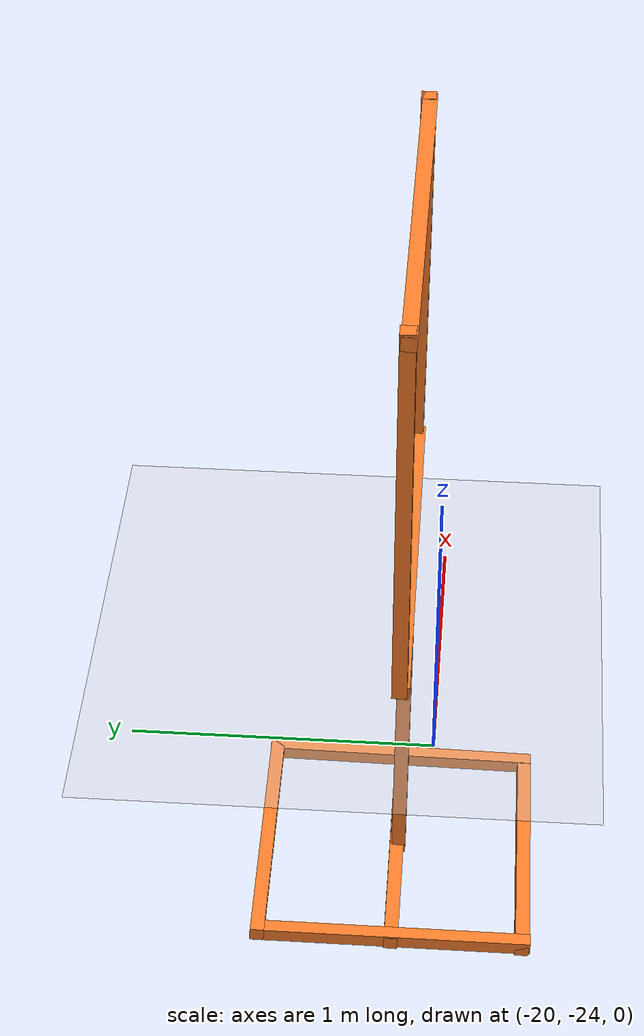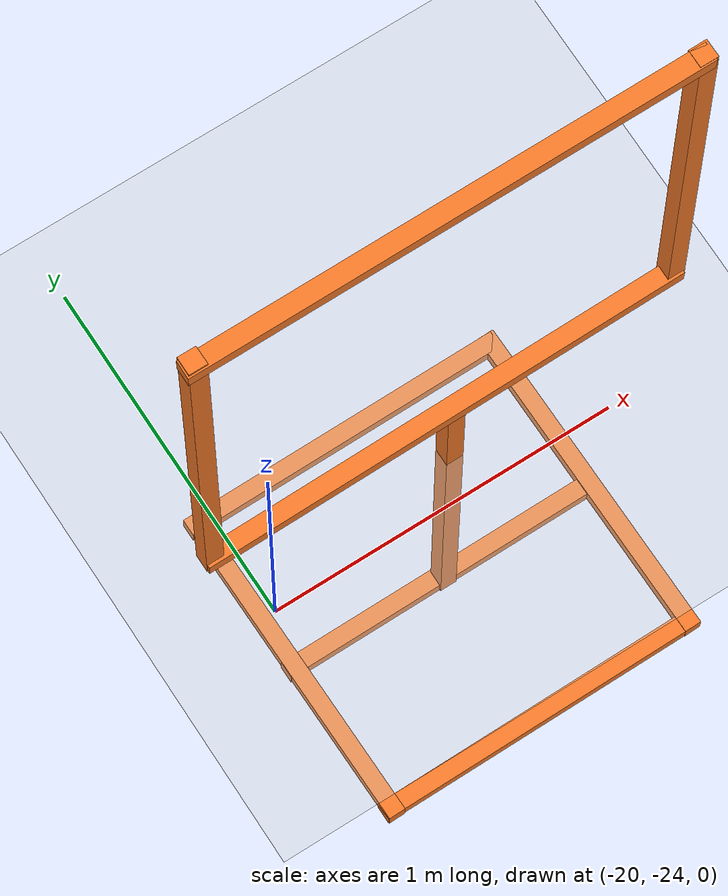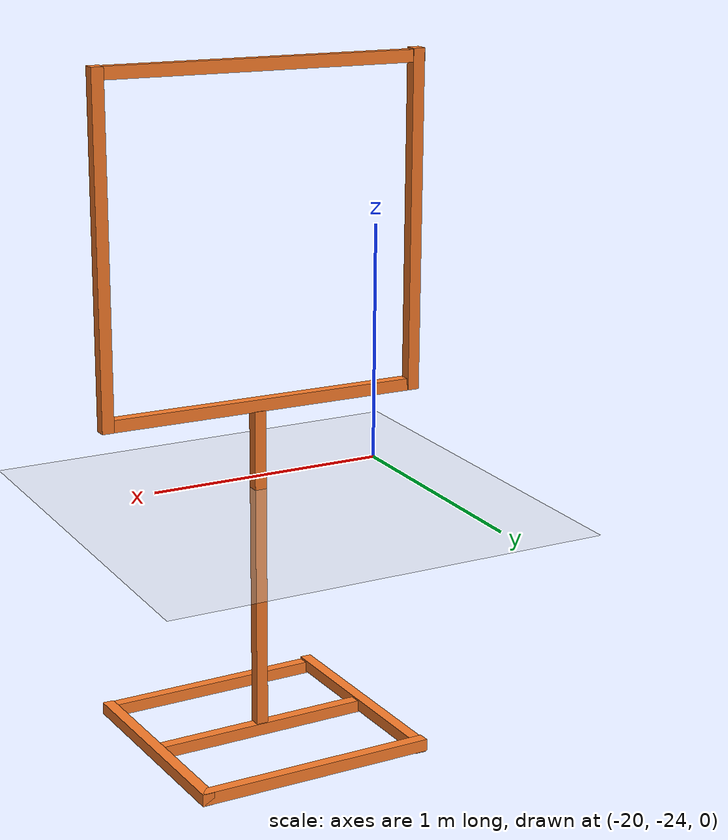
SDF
<sdf version="1.6">
 <world name="default">
  <model name="ground_plane">
   <static>1</static>
   <link name="link">
    <collision name="collision">
     <geometry><plane><normal>0 0 1</normal><size>100 100</size></plane></geometry>
     <surface><friction><ode><mu>100</mu><mu2>50</mu2></ode></friction></surface>
    </collision>
    <visual name="visual">
     <cast_shadows>0</cast_shadows>
     <geometry><plane><normal>0 0 1</normal><size>100 100</size></plane></geometry>
     <material>
      <script><uri>file://media/materials/scripts/gazebo.material</uri><name>Gazebo/Grey</name></script>
     </material>
    </visual>
    <velocity_decay><linear>0</linear><angular>0</angular></velocity_decay>
   </link>
  </model>
  <model name="closed_gate_clone_clone_0_clone_1">
   <link name="link">
    <inertial>
     <mass>1</mass>
     <inertia>
      <ixx>0.166667</ixx>
      <ixy>0</ixy>
      <ixz>0</ixz>
      <iyy>0.166667</iyy>
      <iyz>0</iyz>
      <izz>0.166667</izz>
     </inertia>
    </inertial>
    <pose>0.404756 -0.715724 1.41623 0 -0 0</pose>
    <visual name="visual">
     <geometry><box><size>0.05 0.05 1.4</size></box></geometry>
     <material>
      <script><name>Gazebo/Grey</name><uri>file://media/materials/scripts/gazebo.material</uri></script>
      <shader type="vertex"><normal_map>__default__</normal_map></shader>
      <ambient>0.976 0.484 0.164 1</ambient>
      <diffuse>0.976 0.484 0.164 1</diffuse>
      <specular>0.01 0.01 0.01 1</specular>
      <emissive>0 0 0 1</emissive>
     </material>
    </visual>
    <collision name="collision">
     <geometry><box><size>0.05 0.05 1.4</size></box></geometry>
     <surface>
      <friction>
       <ode><mu>1</mu><mu2>1</mu2><fdir1>0 0 0</fdir1><slip1>0</slip1><slip2>0</slip2></ode>
       <torsional>
        <coefficient>1</coefficient>
        <patch_radius>0</patch_radius>
        <surface_radius>0</surface_radius>
        <use_patch_radius>1</use_patch_radius>
        <ode><slip>0</slip></ode>
       </torsional>
      </friction>
      <bounce><restitution_coefficient>0</restitution_coefficient><threshold>1e+06</threshold></bounce>
      <contact>
       <collide_without_contact>0</collide_without_contact>
       <collide_without_contact_bitmask>1</collide_without_contact_bitmask>
       <collide_bitmask>1</collide_bitmask>
       <ode>
        <soft_cfm>0</soft_cfm>
        <soft_erp>0.2</soft_erp>
        <kp>1e+13</kp>
        <kd>1</kd>
        <max_vel>0.01</max_vel>
        <min_depth>0</min_depth>
       </ode>
       <bullet>
        <split_impulse>1</split_impulse>
        <split_impulse_penetration_threshold>-0.01</split_impulse_penetration_threshold>
        <soft_cfm>0</soft_cfm>
        <soft_erp>0.2</soft_erp>
        <kp>1e+13</kp>
        <kd>1</kd>
       </bullet>
      </contact>
     </surface>
    </collision>
   </link>
   <link name="link_clone_0_clone_0">
    <inertial>
     <mass>1</mass>
     <inertia>
      <ixx>0.166667</ixx>
      <ixy>0</ixy>
      <ixz>0</ixz>
      <iyy>0.166667</iyy>
      <iyz>0</iyz>
      <izz>0.166667</izz>
     </inertia>
    </inertial>
    <pose>1.11096 -0.693594 -0.667388 -1.57955 0.044957 -1.56415</pose>
    <visual name="visual">
     <geometry><box><size>0.05 0.05 1</size></box></geometry>
     <material>
      <script><name>Gazebo/Grey</name><uri>file://media/materials/scripts/gazebo.material</uri></script>
      <shader type="vertex"><normal_map>__default__</normal_map></shader>
      <ambient>0.976 0.484 0.164 1</ambient>
      <diffuse>0.976 0.484 0.164 1</diffuse>
      <specular>0.01 0.01 0.01 1</specular>
      <emissive>0 0 0 1</emissive>
     </material>
    </visual>
    <collision name="collision">
     <geometry><box><size>0.05 0.05 1</size></box></geometry>
     <surface>
      <friction>
       <ode><mu>1</mu><mu2>1</mu2><fdir1>0 0 0</fdir1><slip1>0</slip1><slip2>0</slip2></ode>
       <torsional>
        <coefficient>1</coefficient>
        <patch_radius>0</patch_radius>
        <surface_radius>0</surface_radius>
        <use_patch_radius>1</use_patch_radius>
        <ode><slip>0</slip></ode>
       </torsional>
      </friction>
      <bounce><restitution_coefficient>0</restitution_coefficient><threshold>1e+06</threshold></bounce>
      <contact>
       <collide_without_contact>0</collide_without_contact>
       <collide_without_contact_bitmask>1</collide_without_contact_bitmask>
       <collide_bitmask>1</collide_bitmask>
       <ode>
        <soft_cfm>0</soft_cfm>
        <soft_erp>0.2</soft_erp>
        <kp>1e+13</kp>
        <kd>1</kd>
        <max_vel>0.01</max_vel>
        <min_depth>0</min_depth>
       </ode>
       <bullet>
        <split_impulse>1</split_impulse>
        <split_impulse_penetration_threshold>-0.01</split_impulse_penetration_threshold>
        <soft_cfm>0</soft_cfm>
        <soft_erp>0.2</soft_erp>
        <kp>1e+13</kp>
        <kd>1</kd>
       </bullet>
      </contact>
     </surface>
    </collision>
   </link>
   <link name="link_clone_0_clone_0_clone">
    <inertial>
     <mass>1</mass>
     <inertia>
      <ixx>0.166667</ixx>
      <ixy>0</ixy>
      <ixz>0</ixz>
      <iyy>0.166667</iyy>
      <iyz>0</iyz>
      <izz>0.166667</izz>
     </inertia>
    </inertial>
    <pose>0.637485 -0.695511 -0.656732 -1.55146 -0.019345 0.017432</pose>
    <visual name="visual">
     <geometry><box><size>0.05 0.05 1</size></box></geometry>
     <material>
      <script><name>Gazebo/Grey</name><uri>file://media/materials/scripts/gazebo.material</uri></script>
      <shader type="vertex"><normal_map>__default__</normal_map></shader>
      <ambient>0.976 0.484 0.164 1</ambient>
      <diffuse>0.976 0.484 0.164 1</diffuse>
      <specular>0.01 0.01 0.01 1</specular>
      <emissive>0 0 0 1</emissive>
     </material>
    </visual>
    <collision name="collision">
     <geometry><box><size>0.05 0.05 1</size></box></geometry>
     <surface>
      <friction>
       <ode><mu>1</mu><mu2>1</mu2><fdir1>0 0 0</fdir1><slip1>0</slip1><slip2>0</slip2></ode>
       <torsional>
        <coefficient>1</coefficient>
        <patch_radius>0</patch_radius>
        <surface_radius>0</surface_radius>
        <use_patch_radius>1</use_patch_radius>
        <ode><slip>0</slip></ode>
       </torsional>
      </friction>
      <bounce><restitution_coefficient>0</restitution_coefficient><threshold>1e+06</threshold></bounce>
      <contact>
       <collide_without_contact>0</collide_without_contact>
       <collide_without_contact_bitmask>1</collide_without_contact_bitmask>
       <collide_bitmask>1</collide_bitmask>
       <ode>
        <soft_cfm>0</soft_cfm>
        <soft_erp>0.2</soft_erp>
        <kp>1e+13</kp>
        <kd>1</kd>
        <max_vel>0.01</max_vel>
        <min_depth>0</min_depth>
       </ode>
       <bullet>
        <split_impulse>1</split_impulse>
        <split_impulse_penetration_threshold>-0.01</split_impulse_penetration_threshold>
        <soft_cfm>0</soft_cfm>
        <soft_erp>0.2</soft_erp>
        <kp>1e+13</kp>
        <kd>1</kd>
       </bullet>
      </contact>
     </surface>
    </collision>
   </link>
   <link name="link_clone_0_clone_0_clone_0">
    <inertial>
     <mass>1</mass>
     <inertia>
      <ixx>0.166667</ixx>
      <ixy>0</ixy>
      <ixz>0</ixz>
      <iyy>0.166667</iyy>
      <iyz>0</iyz>
      <izz>0.166667</izz>
     </inertia>
    </inertial>
    <pose>1.12077 -1.16283 -0.677317 -1.57839 0.053451 -1.56287</pose>
    <visual name="visual">
     <geometry><box><size>0.05 0.05 1</size></box></geometry>
     <material>
      <script><name>Gazebo/Grey</name><uri>file://media/materials/scripts/gazebo.material</uri></script>
      <shader type="vertex"><normal_map>__default__</normal_map></shader>
      <ambient>0.976 0.484 0.164 1</ambient>
      <diffuse>0.976 0.484 0.164 1</diffuse>
      <specular>0.01 0.01 0.01 1</specular>
      <emissive>0 0 0 1</emissive>
     </material>
    </visual>
    <collision name="collision">
     <geometry><box><size>0.05 0.05 1</size></box></geometry>
     <surface>
      <friction>
       <ode><mu>1</mu><mu2>1</mu2><fdir1>0 0 0</fdir1><slip1>0</slip1><slip2>0</slip2></ode>
       <torsional>
        <coefficient>1</coefficient>
        <patch_radius>0</patch_radius>
        <surface_radius>0</surface_radius>
        <use_patch_radius>1</use_patch_radius>
        <ode><slip>0</slip></ode>
       </torsional>
      </friction>
      <bounce><restitution_coefficient>0</restitution_coefficient><threshold>1e+06</threshold></bounce>
      <contact>
       <collide_without_contact>0</collide_without_contact>
       <collide_without_contact_bitmask>1</collide_without_contact_bitmask>
       <collide_bitmask>1</collide_bitmask>
       <ode>
        <soft_cfm>0</soft_cfm>
        <soft_erp>0.2</soft_erp>
        <kp>1e+13</kp>
        <kd>1</kd>
        <max_vel>0.01</max_vel>
        <min_depth>0</min_depth>
       </ode>
       <bullet>
        <split_impulse>1</split_impulse>
        <split_impulse_penetration_threshold>-0.01</split_impulse_penetration_threshold>
        <soft_cfm>0</soft_cfm>
        <soft_erp>0.2</soft_erp>
        <kp>1e+13</kp>
        <kd>1</kd>
       </bullet>
      </contact>
     </surface>
    </collision>
   </link>
   <link name="link_clone_0_clone_0_clone_2">
    <inertial>
     <mass>1</mass>
     <inertia>
      <ixx>0.166667</ixx>
      <ixy>0</ixy>
      <ixz>0</ixz>
      <iyy>0.166667</iyy>
      <iyz>0</iyz>
      <izz>0.166667</izz>
     </inertia>
    </inertial>
    <pose>1.10088 -0.214462 -0.645898 -1.57451 0.053447 -1.56287</pose>
    <visual name="visual">
     <geometry><box><size>0.05 0.05 1</size></box></geometry>
     <material>
      <script><name>Gazebo/Grey</name><uri>file://media/materials/scripts/gazebo.material</uri></script>
      <shader type="vertex"><normal_map>__default__</normal_map></shader>
      <ambient>0.976 0.484 0.164 1</ambient>
      <diffuse>0.976 0.484 0.164 1</diffuse>
      <specular>0.01 0.01 0.01 1</specular>
      <emissive>0 0 0 1</emissive>
     </material>
    </visual>
    <collision name="collision">
     <geometry><box><size>0.05 0.05 1</size></box></geometry>
     <surface>
      <friction>
       <ode><mu>1</mu><mu2>1</mu2><fdir1>0 0 0</fdir1><slip1>0</slip1><slip2>0</slip2></ode>
       <torsional>
        <coefficient>1</coefficient>
        <patch_radius>0</patch_radius>
        <surface_radius>0</surface_radius>
        <use_patch_radius>1</use_patch_radius>
        <ode><slip>0</slip></ode>
       </torsional>
      </friction>
      <bounce><restitution_coefficient>0</restitution_coefficient><threshold>1e+06</threshold></bounce>
      <contact>
       <collide_without_contact>0</collide_without_contact>
       <collide_without_contact_bitmask>1</collide_without_contact_bitmask>
       <collide_bitmask>1</collide_bitmask>
       <ode>
        <soft_cfm>0</soft_cfm>
        <soft_erp>0.2</soft_erp>
        <kp>1e+13</kp>
        <kd>1</kd>
        <max_vel>0.01</max_vel>
        <min_depth>0</min_depth>
       </ode>
       <bullet>
        <split_impulse>1</split_impulse>
        <split_impulse_penetration_threshold>-0.01</split_impulse_penetration_threshold>
        <soft_cfm>0</soft_cfm>
        <soft_erp>0.2</soft_erp>
        <kp>1e+13</kp>
        <kd>1</kd>
       </bullet>
      </contact>
     </surface>
    </collision>
   </link>
   <link name="link_clone_0_clone_0_clone_clone">
    <inertial>
     <mass>1</mass>
     <inertia>
      <ixx>0.166667</ixx>
      <ixy>0</ixy>
      <ixz>0</ixz>
      <iyy>0.166667</iyy>
      <iyz>0</iyz>
      <izz>0.166667</izz>
     </inertia>
    </inertial>
    <pose>1.59453 -0.684923 -0.663241 -1.53838 -0.023075 0.018345</pose>
    <visual name="visual">
     <geometry><box><size>0.05 0.05 1</size></box></geometry>
     <material>
      <script><name>Gazebo/Grey</name><uri>file://media/materials/scripts/gazebo.material</uri></script>
      <shader type="vertex"><normal_map>__default__</normal_map></shader>
      <ambient>0.976 0.484 0.164 1</ambient>
      <diffuse>0.976 0.484 0.164 1</diffuse>
      <specular>0.01 0.01 0.01 1</specular>
      <emissive>0 0 0 1</emissive>
     </material>
    </visual>
    <collision name="collision">
     <geometry><box><size>0.05 0.05 1</size></box></geometry>
     <surface>
      <friction>
       <ode><mu>1</mu><mu2>1</mu2><fdir1>0 0 0</fdir1><slip1>0</slip1><slip2>0</slip2></ode>
       <torsional>
        <coefficient>1</coefficient>
        <patch_radius>0</patch_radius>
        <surface_radius>0</surface_radius>
        <use_patch_radius>1</use_patch_radius>
        <ode><slip>0</slip></ode>
       </torsional>
      </friction>
      <bounce><restitution_coefficient>0</restitution_coefficient><threshold>1e+06</threshold></bounce>
      <contact>
       <collide_without_contact>0</collide_without_contact>
       <collide_without_contact_bitmask>1</collide_without_contact_bitmask>
       <collide_bitmask>1</collide_bitmask>
       <ode>
        <soft_cfm>0</soft_cfm>
        <soft_erp>0.2</soft_erp>
        <kp>1e+13</kp>
        <kd>1</kd>
        <max_vel>0.01</max_vel>
        <min_depth>0</min_depth>
       </ode>
       <bullet>
        <split_impulse>1</split_impulse>
        <split_impulse_penetration_threshold>-0.01</split_impulse_penetration_threshold>
        <soft_cfm>0</soft_cfm>
        <soft_erp>0.2</soft_erp>
        <kp>1e+13</kp>
        <kd>1</kd>
       </bullet>
      </contact>
     </surface>
    </collision>
   </link>
   <link name="link_clone_0_clone_1">
    <inertial>
     <mass>1</mass>
     <inertia>
      <ixx>0.166667</ixx>
      <ixy>0</ixy>
      <ixz>0</ixz>
      <iyy>0.166667</iyy>
      <iyz>0</iyz>
      <izz>0.166667</izz>
     </inertia>
    </inertial>
    <pose>1.08198 -0.717602 0.744079 -1.56201 0.04483 -1.56244</pose>
    <visual name="visual">
     <geometry><box><size>0.05 0.05 1.4</size></box></geometry>
     <material>
      <script><name>Gazebo/Grey</name><uri>file://media/materials/scripts/gazebo.material</uri></script>
      <shader type="vertex"><normal_map>__default__</normal_map></shader>
      <ambient>0.976 0.484 0.164 1</ambient>
      <diffuse>0.976 0.484 0.164 1</diffuse>
      <specular>0.01 0.01 0.01 1</specular>
      <emissive>0 0 0 1</emissive>
     </material>
    </visual>
    <collision name="collision">
     <geometry><box><size>0.05 0.05 1.4</size></box></geometry>
     <surface>
      <friction>
       <ode><mu>1</mu><mu2>1</mu2><fdir1>0 0 0</fdir1><slip1>0</slip1><slip2>0</slip2></ode>
       <torsional>
        <coefficient>1</coefficient>
        <patch_radius>0</patch_radius>
        <surface_radius>0</surface_radius>
        <use_patch_radius>1</use_patch_radius>
        <ode><slip>0</slip></ode>
       </torsional>
      </friction>
      <bounce><restitution_coefficient>0</restitution_coefficient><threshold>1e+06</threshold></bounce>
      <contact>
       <collide_without_contact>0</collide_without_contact>
       <collide_without_contact_bitmask>1</collide_without_contact_bitmask>
       <collide_bitmask>1</collide_bitmask>
       <ode>
        <soft_cfm>0</soft_cfm>
        <soft_erp>0.2</soft_erp>
        <kp>1e+13</kp>
        <kd>1</kd>
        <max_vel>0.01</max_vel>
        <min_depth>0</min_depth>
       </ode>
       <bullet>
        <split_impulse>1</split_impulse>
        <split_impulse_penetration_threshold>-0.01</split_impulse_penetration_threshold>
        <soft_cfm>0</soft_cfm>
        <soft_erp>0.2</soft_erp>
        <kp>1e+13</kp>
        <kd>1</kd>
       </bullet>
      </contact>
     </surface>
    </collision>
   </link>
   <link name="link_clone_0_clone_1_clone">
    <inertial>
     <mass>1</mass>
     <inertia>
      <ixx>0.166667</ixx>
      <ixy>0</ixy>
      <ixz>0</ixz>
      <iyy>0.166667</iyy>
      <iyz>0</iyz>
      <izz>0.166667</izz>
     </inertia>
    </inertial>
    <pose>1.07529 -0.719849 2.09328 -1.55888 0.053444 -1.57124</pose>
    <visual name="visual">
     <geometry><box><size>0.05 0.05 1.4</size></box></geometry>
     <material>
      <script><name>Gazebo/Grey</name><uri>file://media/materials/scripts/gazebo.material</uri></script>
      <shader type="vertex"><normal_map>__default__</normal_map></shader>
      <ambient>0.976 0.484 0.164 1</ambient>
      <diffuse>0.976 0.484 0.164 1</diffuse>
      <specular>0.01 0.01 0.01 1</specular>
      <emissive>0 0 0 1</emissive>
     </material>
    </visual>
    <collision name="collision">
     <geometry><box><size>0.05 0.05 1.4</size></box></geometry>
     <surface>
      <friction>
       <ode><mu>1</mu><mu2>1</mu2><fdir1>0 0 0</fdir1><slip1>0</slip1><slip2>0</slip2></ode>
       <torsional>
        <coefficient>1</coefficient>
        <patch_radius>0</patch_radius>
        <surface_radius>0</surface_radius>
        <use_patch_radius>1</use_patch_radius>
        <ode><slip>0</slip></ode>
       </torsional>
      </friction>
      <bounce><restitution_coefficient>0</restitution_coefficient><threshold>1e+06</threshold></bounce>
      <contact>
       <collide_without_contact>0</collide_without_contact>
       <collide_without_contact_bitmask>1</collide_without_contact_bitmask>
       <collide_bitmask>1</collide_bitmask>
       <ode>
        <soft_cfm>0</soft_cfm>
        <soft_erp>0.2</soft_erp>
        <kp>1e+13</kp>
        <kd>1</kd>
        <max_vel>0.01</max_vel>
        <min_depth>0</min_depth>
       </ode>
       <bullet>
        <split_impulse>1</split_impulse>
        <split_impulse_penetration_threshold>-0.01</split_impulse_penetration_threshold>
        <soft_cfm>0</soft_cfm>
        <soft_erp>0.2</soft_erp>
        <kp>1e+13</kp>
        <kd>1</kd>
       </bullet>
      </contact>
     </surface>
    </collision>
   </link>
   <link name="link_clone_1">
    <inertial>
     <mass>1</mass>
     <inertia>
      <ixx>0.166667</ixx>
      <ixy>0</ixy>
      <ixz>0</ixz>
      <iyy>0.166667</iyy>
      <iyz>0</iyz>
      <izz>0.166667</izz>
     </inertia>
    </inertial>
    <pose>1.11167 -0.706269 0.02254 0.008527 -0.003582 0.001077</pose>
    <visual name="visual">
     <geometry><box><size>0.05 0.05 1.4</size></box></geometry>
     <material>
      <script><name>Gazebo/Grey</name><uri>file://media/materials/scripts/gazebo.material</uri></script>
      <shader type="vertex"><normal_map>__default__</normal_map></shader>
      <ambient>0.976 0.484 0.164 1</ambient>
      <diffuse>0.976 0.484 0.164 1</diffuse>
      <specular>0.01 0.01 0.01 1</specular>
      <emissive>0 0 0 1</emissive>
     </material>
    </visual>
    <collision name="collision">
     <geometry><box><size>0.05 0.05 1.4</size></box></geometry>
     <surface>
      <friction>
       <ode><mu>1</mu><mu2>1</mu2><fdir1>0 0 0</fdir1><slip1>0</slip1><slip2>0</slip2></ode>
       <torsional>
        <coefficient>1</coefficient>
        <patch_radius>0</patch_radius>
        <surface_radius>0</surface_radius>
        <use_patch_radius>1</use_patch_radius>
        <ode><slip>0</slip></ode>
       </torsional>
      </friction>
      <bounce><restitution_coefficient>0</restitution_coefficient><threshold>1e+06</threshold></bounce>
      <contact>
       <collide_without_contact>0</collide_without_contact>
       <collide_without_contact_bitmask>1</collide_without_contact_bitmask>
       <collide_bitmask>1</collide_bitmask>
       <ode>
        <soft_cfm>0</soft_cfm>
        <soft_erp>0.2</soft_erp>
        <kp>1e+13</kp>
        <kd>1</kd>
        <max_vel>0.01</max_vel>
        <min_depth>0</min_depth>
       </ode>
       <bullet>
        <split_impulse>1</split_impulse>
        <split_impulse_penetration_threshold>-0.01</split_impulse_penetration_threshold>
        <soft_cfm>0</soft_cfm>
        <soft_erp>0.2</soft_erp>
        <kp>1e+13</kp>
        <kd>1</kd>
       </bullet>
      </contact>
     </surface>
    </collision>
   </link>
   <link name="link_clone_7">
    <inertial>
     <mass>1</mass>
     <inertia>
      <ixx>0.166667</ixx>
      <ixy>0</ixy>
      <ixz>0</ixz>
      <iyy>0.166667</iyy>
      <iyz>0</iyz>
      <izz>0.166667</izz>
     </inertia>
    </inertial>
    <pose>1.75876 -0.711707 1.42733 0.008527 -0.003582 0.001077</pose>
    <visual name="visual">
     <geometry><box><size>0.05 0.05 1.4</size></box></geometry>
     <material>
      <script><name>Gazebo/Grey</name><uri>file://media/materials/scripts/gazebo.material</uri></script>
      <shader type="vertex"><normal_map>__default__</normal_map></shader>
      <ambient>0.976 0.484 0.164 1</ambient>
      <diffuse>0.976 0.484 0.164 1</diffuse>
      <specular>0.01 0.01 0.01 1</specular>
      <emissive>0 0 0 1</emissive>
     </material>
    </visual>
    <collision name="collision">
     <geometry><box><size>0.05 0.05 1.4</size></box></geometry>
     <surface>
      <friction>
       <ode><mu>1</mu><mu2>1</mu2><fdir1>0 0 0</fdir1><slip1>0</slip1><slip2>0</slip2></ode>
       <torsional>
        <coefficient>1</coefficient>
        <patch_radius>0</patch_radius>
        <surface_radius>0</surface_radius>
        <use_patch_radius>1</use_patch_radius>
        <ode><slip>0</slip></ode>
       </torsional>
      </friction>
      <bounce><restitution_coefficient>0</restitution_coefficient><threshold>1e+06</threshold></bounce>
      <contact>
       <collide_without_contact>0</collide_without_contact>
       <collide_without_contact_bitmask>1</collide_without_contact_bitmask>
       <collide_bitmask>1</collide_bitmask>
       <ode>
        <soft_cfm>0</soft_cfm>
        <soft_erp>0.2</soft_erp>
        <kp>1e+13</kp>
        <kd>1</kd>
        <max_vel>0.01</max_vel>
        <min_depth>0</min_depth>
       </ode>
       <bullet>
        <split_impulse>1</split_impulse>
        <split_impulse_penetration_threshold>-0.01</split_impulse_penetration_threshold>
        <soft_cfm>0</soft_cfm>
        <soft_erp>0.2</soft_erp>
        <kp>1e+13</kp>
        <kd>1</kd>
       </bullet>
      </contact>
     </surface>
    </collision>
   </link>
   <static>1</static>
   <pose>-20.5132 -23.1707 -0.396945 0 -0 0</pose>
  </model>
 </world>
</sdf>
